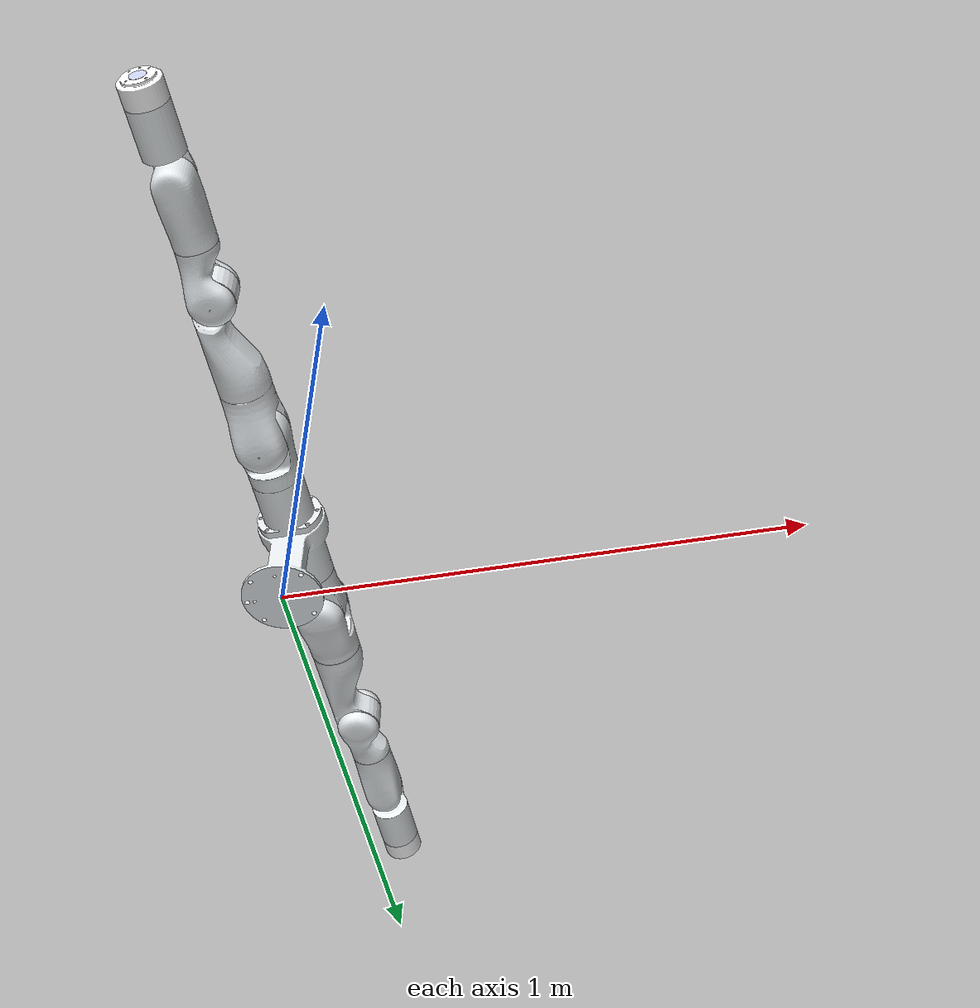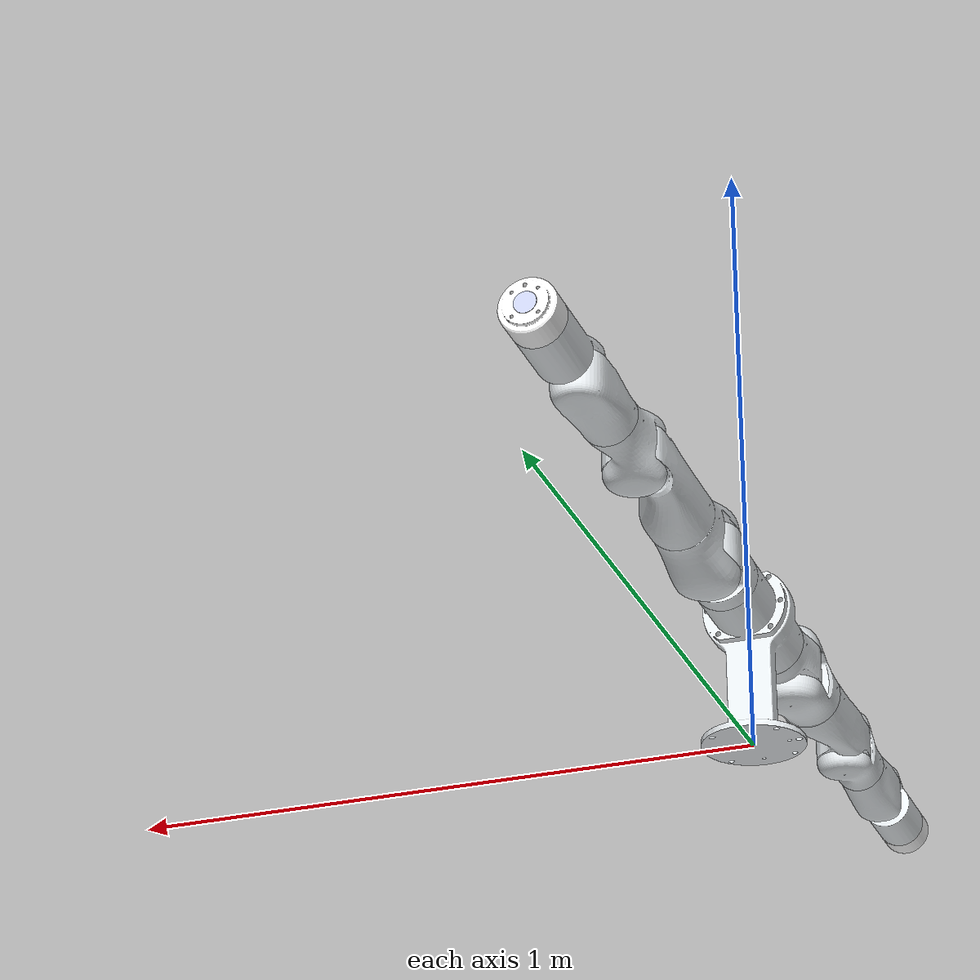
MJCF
<mujoco model="k1_description">
  <compiler angle="radian"/>

  <asset>
    <mesh name="base_link" content_type="model/stl" file="base_link.STL"/>
    <mesh name="r1" content_type="model/stl" file="r1.STL"/>
    <mesh name="r2" content_type="model/stl" file="r2.STL"/>
    <mesh name="r3" content_type="model/stl" file="r3.STL"/>
    <mesh name="r4" content_type="model/stl" file="r4.STL"/>
    <mesh name="r5" content_type="model/stl" file="r5.STL"/>
    <mesh name="r6" content_type="model/stl" file="r6.STL"/>
    <mesh name="r7" content_type="model/stl" file="r7.STL"/>
    <mesh name="rt" content_type="model/stl" file="rt.STL"/>
    <mesh name="l1" content_type="model/stl" file="l1.STL"/>
    <mesh name="l2" content_type="model/stl" file="l2.STL"/>
    <mesh name="l3" content_type="model/stl" file="l3.STL"/>
    <mesh name="l4" content_type="model/stl" file="l4.STL"/>
    <mesh name="l5" content_type="model/stl" file="l5.STL"/>
    <mesh name="l6" content_type="model/stl" file="l6.STL"/>
    <mesh name="l7" content_type="model/stl" file="l7.STL"/>
    <mesh name="lt" content_type="model/stl" file="lt.STL"/>
  </asset>

  <worldbody>
    <geom type="mesh" rgba="0.898039 0.917647 0.929412 1" mesh="base_link"/>
    <body name="r1" pos="0 -0.015 0.217" quat="0.707105 0.707108 0 0">
      <inertial pos="2.46089e-06 2.84971e-07 0.164287" quat="0.707167 2.59119e-05 9.84412e-06 0.707047" mass="1.49079" diaginertia="0.00378376 0.00305952 0.00212532"/>
      <joint name="r-j1" pos="0 0 0" axis="0 0 1" range="-6.2832 6.2832"/>
      <geom type="mesh" rgba="0.898039 0.917647 0.929412 1" mesh="r1"/>
      <body name="r2" pos="0 0 0.2075" quat="-2.59734e-06 2.59735e-06 0.707108 -0.707105">
        <inertial pos="1.71094e-05 -0.0452986 -0.000762955" quat="0.727478 0.686131 0.000277485 0.000318842" mass="2.70256" diaginertia="0.00984923 0.00748401 0.00588084"/>
        <joint name="r-j2" pos="0 0 0" axis="0 0 1" range="-1.8325 1.8325"/>
        <geom type="mesh" rgba="0.898039 0.917647 0.929412 1" mesh="r2"/>
        <body name="r3" quat="0.707105 0.707108 0 0">
          <inertial pos="0.00699745 0.000445737 0.236701" quat="0.709376 0.00337082 0.00258928 0.704817" mass="3.54789" diaginertia="0.0186989 0.0185309 0.00375394"/>
          <joint name="r-j3" pos="0 0 0" axis="0 0 1" range="-6.2832 6.2832"/>
          <geom type="mesh" rgba="0.898039 0.917647 0.929412 1" mesh="r3"/>
          <body name="r4" pos="-0.00040027 0 0.33028" quat="0.707105 -0.707108 0 0">
            <inertial pos="0.00464519 -0.0316041 0.000428234" quat="0.711055 0.701258 0.0356952 0.0369292" mass="1.47374" diaginertia="0.00380982 0.00281145 0.00223921"/>
            <joint name="r-j4" pos="0 0 0" axis="0 0 1" range="-2.5307 0.5235"/>
            <geom type="mesh" rgba="0.898039 0.917647 0.929412 1" mesh="r4"/>
            <body name="r5" quat="0.707105 0.707108 0 0">
              <inertial pos="-2.73577e-06 0.00407884 0.18353" quat="0.706646 -0.037008 0.0369129 0.705634" mass="2.28081" diaginertia="0.00561892 0.0054924 0.00191859"/>
              <joint name="r-j5" pos="0 0 0" axis="0 0 1" range="-6.2832 6.2832"/>
              <geom type="mesh" rgba="0.898039 0.917647 0.929412 1" mesh="r5"/>
              <body name="r6" pos="0 0 0.23494" quat="-2.59734e-06 2.59735e-06 0.707108 -0.707105">
                <inertial pos="-1.87506e-07 -0.086963 0.00554801" quat="0.430647 0.56085 -0.560836 0.430644" mass="1.76168" diaginertia="0.00445732 0.00444042 0.00137145"/>
                <joint name="r-j6" pos="0 0 0" axis="0 0 1" range="-1.8325 1.8325"/>
                <geom type="mesh" rgba="0.898039 0.917647 0.929412 1" mesh="r6"/>
                <body name="r7" quat="0.707105 0.707108 0 0">
                  <inertial pos="2.68777e-07 -3.37424e-05 0.17628" quat="0.0010751 0.707106 0.0010751 0.707106" mass="0.636542" diaginertia="0.000512339 0.000371318 0.000370813"/>
                  <joint name="r-j7" pos="0 0 0" axis="0 0 1" range="-6.2832 6.2832"/>
                  <geom type="mesh" rgba="1 1 1 1" mesh="r7"/>
                  <geom pos="0 0 0.20277" quat="1 0 0 0" type="mesh" rgba="0.792157 0.819608 0.933333 1" mesh="rt"/>
                </body>
              </body>
            </body>
          </body>
        </body>
      </body>
    </body>
    <body name="l1" pos="0 0.015 0.217" quat="-2.59734e-06 -2.59735e-06 -0.707108 -0.707105">
      <inertial pos="-2.46089e-06 -2.84971e-07 0.164287" quat="0.707167 -2.59119e-05 -9.84412e-06 0.707047" mass="1.49079" diaginertia="0.00378376 0.00305952 0.00212532"/>
      <joint name="l-j1" pos="0 0 0" axis="0 0 1" range="-6.2832 6.2832"/>
      <geom type="mesh" rgba="0.898039 0.917647 0.929412 1" mesh="l1"/>
      <body name="l2" pos="0 0 0.2075" quat="0.707105 -0.707108 0 0">
        <inertial pos="1.71098e-05 -0.0452986 -0.000764631" quat="0.727478 0.686131 0.000277483 0.000318848" mass="2.70256" diaginertia="0.00984923 0.00748401 0.00588084"/>
        <joint name="l-j2" pos="0 0 0" axis="0 0 1" range="-1.8325 1.8325"/>
        <geom type="mesh" rgba="0.898039 0.917647 0.929412 1" mesh="l2"/>
        <body name="l3" quat="0.707105 0.707108 0 0">
          <inertial pos="0.00699745 0.000444598 0.236701" quat="0.709376 0.00337002 0.00259008 0.704817" mass="3.54789" diaginertia="0.0186989 0.0185309 0.00375394"/>
          <joint name="l-j3" pos="0 0 0" axis="0 0 1" range="-6.2832 6.2832"/>
          <geom type="mesh" rgba="0.898039 0.917647 0.929412 1" mesh="l3"/>
          <body name="l4" pos="-0.00040027 0 0.33028" quat="0.707105 -0.707108 0 0">
            <inertial pos="0.00464517 -0.0316039 0.000428109" quat="0.711056 0.701257 0.0356954 0.0369292" mass="1.47374" diaginertia="0.00380982 0.00281146 0.00223921"/>
            <joint name="l-j4" pos="0 0 0" axis="0 0 1" range="-2.5307 0.5235"/>
            <geom type="mesh" rgba="0.898039 0.917647 0.929412 1" mesh="l4"/>
            <body name="l5" quat="0.707105 0.707108 0 0">
              <inertial pos="2.28035e-06 -0.00407998 0.18353" quat="0.706533 0.037006 -0.0369278 0.705746" mass="2.28088" diaginertia="0.005619 0.00549252 0.00191867"/>
              <joint name="l-j5" pos="0 0 0" axis="0 0 1" range="-6.2832 6.2832"/>
              <geom type="mesh" rgba="0.898039 0.917647 0.929412 1" mesh="l5"/>
              <body name="l6" pos="0 0 0.23494" quat="0.707105 -0.707108 0 0">
                <inertial pos="-1.87506e-07 -0.086963 0.00555106" quat="0.430647 0.56085 -0.560836 0.430644" mass="1.76168" diaginertia="0.00445732 0.00444042 0.00137145"/>
                <joint name="l-j6" pos="0 0 0" axis="0 0 1" range="-1.8325 1.8325"/>
                <geom type="mesh" rgba="0.898039 0.917647 0.929412 1" mesh="l6"/>
                <body name="l7" quat="0.707105 0.707108 0 0">
                  <inertial pos="2.68777e-07 -3.10986e-05 0.17628" quat="0.00107456 0.707106 0.00107456 0.707106" mass="0.636542" diaginertia="0.000512339 0.000371319 0.000370813"/>
                  <joint name="l-j7" pos="0 0 0" axis="0 0 1" range="-6.2832 6.2832"/>
                  <geom type="mesh" rgba="1 1 1 1" mesh="l7"/>
                  <geom pos="0 0 0.202772" quat="1 0 0 0" type="mesh" rgba="0.792157 0.819608 0.933333 1" mesh="lt"/>
                </body>
              </body>
            </body>
          </body>
        </body>
      </body>
    </body>
  </worldbody>
</mujoco>
